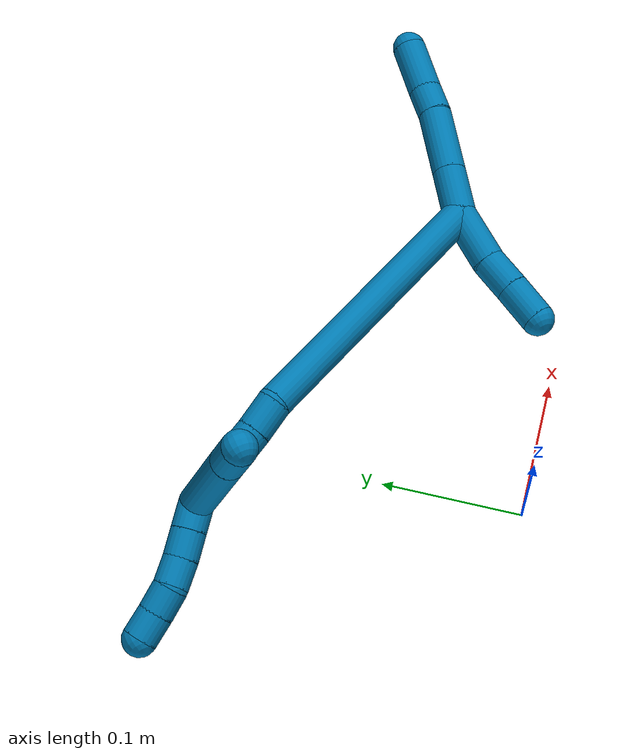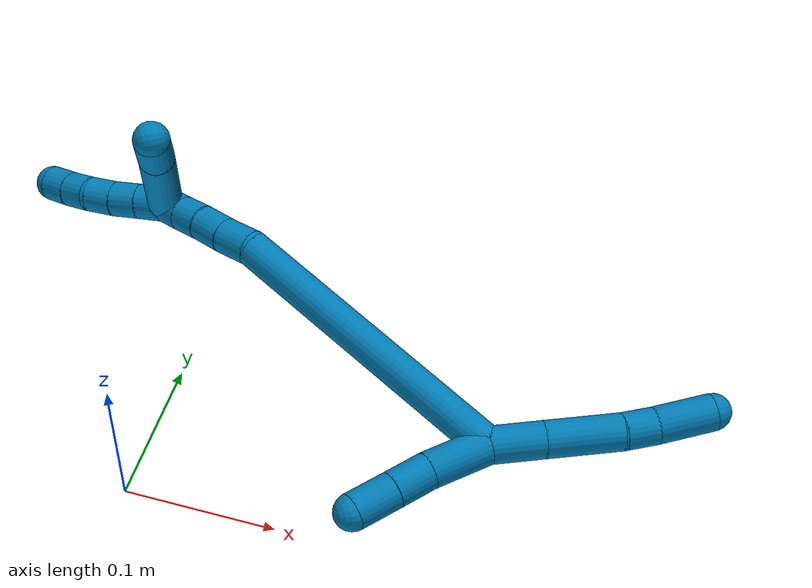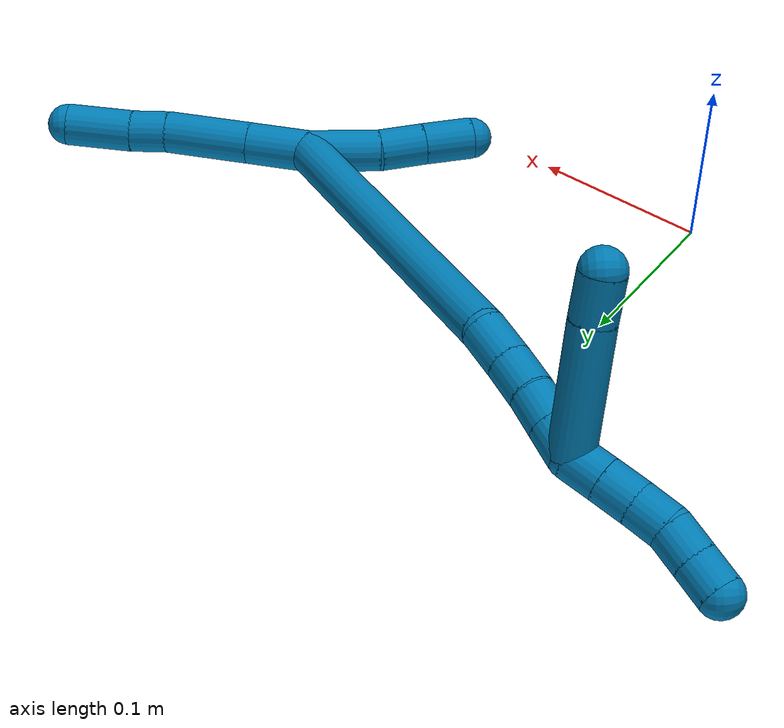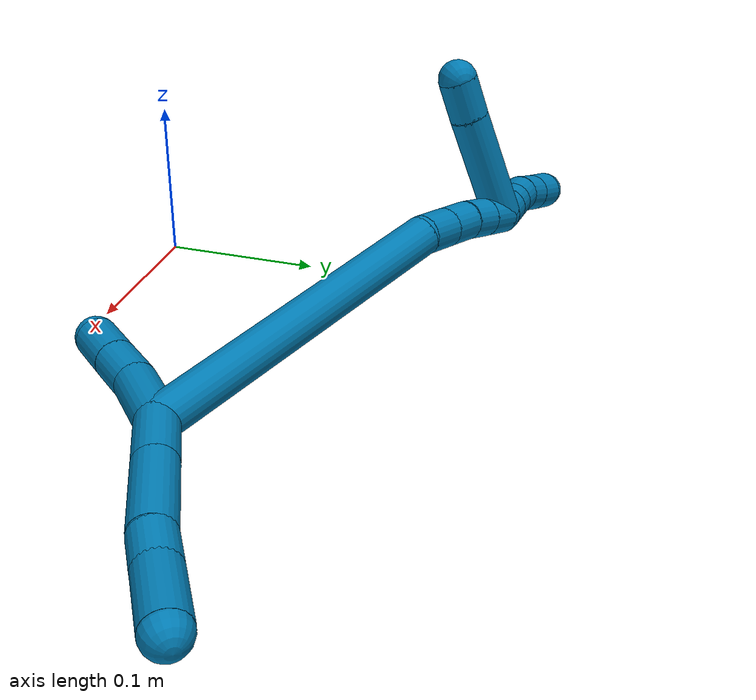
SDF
<sdf version="1.7">
 <world name="default">
  <model name="9">
   <static>0</static>
   <link name="9">
    <collision name="collision-cylinder-e_1_2_8">
     <pose>0.002317 0.003812 -0.017721 -2.92972 0.127153 -1.07891</pose>
     <geometry><cylinder><radius>0.0125</radius><length>0.036548</length></cylinder></geometry>
     <surface>
      <friction><ode><mu>1.16</mu><mu2>1.16</mu2><slip1>0</slip1><slip2>0</slip2></ode></friction>
      <contact><ode><kp>1e+06</kp><kd>1</kd><max_vel>0</max_vel><min_depth>0.001</min_depth></ode></contact>
     </surface>
    </collision>
    <visual name="visual-cylinder-e_1_2_8">
     <pose>0.002317 0.003812 -0.017721 -2.92972 0.127153 -1.07891</pose>
     <geometry><cylinder><radius>0.0125</radius><length>0.036548</length></cylinder></geometry>
     <material><ambient>0 0.490196 0.709804 1</ambient></material>
    </visual>
    <collision name="collision-cylinder-e_2_8_9">
     <pose>0.007951 0.012958 -0.060344 -2.93055 0.129504 -1.09872</pose>
     <geometry><cylinder><radius>0.0125</radius><length>0.051363</length></cylinder></geometry>
     <surface>
      <friction><ode><mu>1.16</mu><mu2>1.16</mu2><slip1>0</slip1><slip2>0</slip2></ode></friction>
      <contact><ode><kp>1e+06</kp><kd>1</kd><max_vel>0</max_vel><min_depth>0.001</min_depth></ode></contact>
     </surface>
    </collision>
    <visual name="visual-cylinder-e_2_8_9">
     <pose>0.007951 0.012958 -0.060344 -2.93055 0.129504 -1.09872</pose>
     <geometry><cylinder><radius>0.0125</radius><length>0.051363</length></cylinder></geometry>
     <material><ambient>0 0.490196 0.709804 1</ambient></material>
    </visual>
    <collision name="collision-cylinder-e_3_9_10">
     <pose>0.012072 0.019341 -0.0964 -3.04788 0.071613 -1.30469</pose>
     <geometry><cylinder><radius>0.0125</radius><length>0.022464</length></cylinder></geometry>
     <surface>
      <friction><ode><mu>1.16</mu><mu2>1.16</mu2><slip1>0</slip1><slip2>0</slip2></ode></friction>
      <contact><ode><kp>1e+06</kp><kd>1</kd><max_vel>0</max_vel><min_depth>0.001</min_depth></ode></contact>
     </surface>
    </collision>
    <visual name="visual-cylinder-e_3_9_10">
     <pose>0.012072 0.019341 -0.0964 -3.04788 0.071613 -1.30469</pose>
     <geometry><cylinder><radius>0.0125</radius><length>0.022464</length></cylinder></geometry>
     <material><ambient>0 0.490196 0.709804 1</ambient></material>
    </visual>
    <collision name="collision-cylinder-e_4_10_6">
     <pose>0.01301 0.023605 -0.127103 -2.9786 0.006784 -0.083006</pose>
     <geometry><cylinder><radius>0.0125</radius><length>0.039625</length></cylinder></geometry>
     <surface>
      <friction><ode><mu>1.16</mu><mu2>1.16</mu2><slip1>0</slip1><slip2>0</slip2></ode></friction>
      <contact><ode><kp>1e+06</kp><kd>1</kd><max_vel>0</max_vel><min_depth>0.001</min_depth></ode></contact>
     </surface>
    </collision>
    <visual name="visual-cylinder-e_4_10_6">
     <pose>0.01301 0.023605 -0.127103 -2.9786 0.006784 -0.083006</pose>
     <geometry><cylinder><radius>0.0125</radius><length>0.039625</length></cylinder></geometry>
     <material><ambient>0 0.490196 0.709804 1</ambient></material>
    </visual>
    <collision name="collision-cylinder-e_1_2_11">
     <pose>0.002711 -0.000586 0.021311 0.027486 0.126461 0.00174</pose>
     <geometry><cylinder><radius>0.0125</radius><length>0.042982</length></cylinder></geometry>
     <surface>
      <friction><ode><mu>1.16</mu><mu2>1.16</mu2><slip1>0</slip1><slip2>0</slip2></ode></friction>
      <contact><ode><kp>1e+06</kp><kd>1</kd><max_vel>0</max_vel><min_depth>0.001</min_depth></ode></contact>
     </surface>
    </collision>
    <visual name="visual-cylinder-e_1_2_11">
     <pose>0.002711 -0.000586 0.021311 0.027486 0.126461 0.00174</pose>
     <geometry><cylinder><radius>0.0125</radius><length>0.042982</length></cylinder></geometry>
     <material><ambient>0 0.490196 0.709804 1</ambient></material>
    </visual>
    <collision name="collision-cylinder-e_2_11_12">
     <pose>0.007967 0.000396 0.055917 -0.117405 0.187905 -0.011076</pose>
     <geometry><cylinder><radius>0.0125</radius><length>0.027254</length></cylinder></geometry>
     <surface>
      <friction><ode><mu>1.16</mu><mu2>1.16</mu2><slip1>0</slip1><slip2>0</slip2></ode></friction>
      <contact><ode><kp>1e+06</kp><kd>1</kd><max_vel>0</max_vel><min_depth>0.001</min_depth></ode></contact>
     </surface>
    </collision>
    <visual name="visual-cylinder-e_2_11_12">
     <pose>0.007967 0.000396 0.055917 -0.117405 0.187905 -0.011076</pose>
     <geometry><cylinder><radius>0.0125</radius><length>0.027254</length></cylinder></geometry>
     <material><ambient>0 0.490196 0.709804 1</ambient></material>
    </visual>
    <collision name="collision-cylinder-e_3_12_5">
     <pose>0.013265 0.003378 0.083769 -0.096825 0.186036 -0.009039</pose>
     <geometry><cylinder><radius>0.0125</radius><length>0.029764</length></cylinder></geometry>
     <surface>
      <friction><ode><mu>1.16</mu><mu2>1.16</mu2><slip1>0</slip1><slip2>0</slip2></ode></friction>
      <contact><ode><kp>1e+06</kp><kd>1</kd><max_vel>0</max_vel><min_depth>0.001</min_depth></ode></contact>
     </surface>
    </collision>
    <visual name="visual-cylinder-e_3_12_5">
     <pose>0.013265 0.003378 0.083769 -0.096825 0.186036 -0.009039</pose>
     <geometry><cylinder><radius>0.0125</radius><length>0.029764</length></cylinder></geometry>
     <material><ambient>0 0.490196 0.709804 1</ambient></material>
    </visual>
    <collision name="collision-cylinder-e_1_2_13">
     <pose>-0.074426 -0.059745 0.04722 0.901958 -0.773934 -0.38968</pose>
     <geometry><cylinder><radius>0.0125</radius><length>0.212965</length></cylinder></geometry>
     <surface>
      <friction><ode><mu>1.16</mu><mu2>1.16</mu2><slip1>0</slip1><slip2>0</slip2></ode></friction>
      <contact><ode><kp>1e+06</kp><kd>1</kd><max_vel>0</max_vel><min_depth>0.001</min_depth></ode></contact>
     </surface>
    </collision>
    <visual name="visual-cylinder-e_1_2_13">
     <pose>-0.074426 -0.059745 0.04722 0.901958 -0.773934 -0.38968</pose>
     <geometry><cylinder><radius>0.0125</radius><length>0.212965</length></cylinder></geometry>
     <material><ambient>0 0.490196 0.709804 1</ambient></material>
    </visual>
    <collision name="collision-cylinder-e_2_13_14">
     <pose>-0.154563 -0.128735 0.100499 0.990722 -0.476844 -0.261137</pose>
     <geometry><cylinder><radius>0.0125</radius><length>0.02488</length></cylinder></geometry>
     <surface>
      <friction><ode><mu>1.16</mu><mu2>1.16</mu2><slip1>0</slip1><slip2>0</slip2></ode></friction>
      <contact><ode><kp>1e+06</kp><kd>1</kd><max_vel>0</max_vel><min_depth>0.001</min_depth></ode></contact>
     </surface>
    </collision>
    <visual name="visual-cylinder-e_2_13_14">
     <pose>-0.154563 -0.128735 0.100499 0.990722 -0.476844 -0.261137</pose>
     <geometry><cylinder><radius>0.0125</radius><length>0.02488</length></cylinder></geometry>
     <material><ambient>0 0.490196 0.709804 1</ambient></material>
    </visual>
    <collision name="collision-cylinder-e_3_14_15">
     <pose>-0.165799 -0.146195 0.111517 1.02763 -0.522438 -0.29949</pose>
     <geometry><cylinder><radius>0.0125</radius><length>0.02215</length></cylinder></geometry>
     <surface>
      <friction><ode><mu>1.16</mu><mu2>1.16</mu2><slip1>0</slip1><slip2>0</slip2></ode></friction>
      <contact><ode><kp>1e+06</kp><kd>1</kd><max_vel>0</max_vel><min_depth>0.001</min_depth></ode></contact>
     </surface>
    </collision>
    <visual name="visual-cylinder-e_3_14_15">
     <pose>-0.165799 -0.146195 0.111517 1.02763 -0.522438 -0.29949</pose>
     <geometry><cylinder><radius>0.0125</radius><length>0.02215</length></cylinder></geometry>
     <material><ambient>0 0.490196 0.709804 1</ambient></material>
    </visual>
    <collision name="collision-cylinder-e_4_15_16">
     <pose>-0.175541 -0.162462 0.120654 1.09218 -0.435187 -0.267135</pose>
     <geometry><cylinder><radius>0.0125</radius><length>0.020003</length></cylinder></geometry>
     <surface>
      <friction><ode><mu>1.16</mu><mu2>1.16</mu2><slip1>0</slip1><slip2>0</slip2></ode></friction>
      <contact><ode><kp>1e+06</kp><kd>1</kd><max_vel>0</max_vel><min_depth>0.001</min_depth></ode></contact>
     </surface>
    </collision>
    <visual name="visual-cylinder-e_4_15_16">
     <pose>-0.175541 -0.162462 0.120654 1.09218 -0.435187 -0.267135</pose>
     <geometry><cylinder><radius>0.0125</radius><length>0.020003</length></cylinder></geometry>
     <material><ambient>0 0.490196 0.709804 1</ambient></material>
    </visual>
    <collision name="collision-cylinder-e_5_16_1">
     <pose>-0.184152 -0.178493 0.128954 1.09399 -0.45495 -0.28009</pose>
     <geometry><cylinder><radius>0.0125</radius><length>0.020002</length></cylinder></geometry>
     <surface>
      <friction><ode><mu>1.16</mu><mu2>1.16</mu2><slip1>0</slip1><slip2>0</slip2></ode></friction>
      <contact><ode><kp>1e+06</kp><kd>1</kd><max_vel>0</max_vel><min_depth>0.001</min_depth></ode></contact>
     </surface>
    </collision>
    <visual name="visual-cylinder-e_5_16_1">
     <pose>-0.184152 -0.178493 0.128954 1.09399 -0.45495 -0.28009</pose>
     <geometry><cylinder><radius>0.0125</radius><length>0.020002</length></cylinder></geometry>
     <material><ambient>0 0.490196 0.709804 1</ambient></material>
    </visual>
    <collision name="collision-cylinder-e_1_1_17">
     <pose>-0.191316 -0.192508 0.140557 0.678672 -0.280571 -0.099611</pose>
     <geometry><cylinder><radius>0.0125</radius><length>0.02</length></cylinder></geometry>
     <surface>
      <friction><ode><mu>1.16</mu><mu2>1.16</mu2><slip1>0</slip1><slip2>0</slip2></ode></friction>
      <contact><ode><kp>1e+06</kp><kd>1</kd><max_vel>0</max_vel><min_depth>0.001</min_depth></ode></contact>
     </surface>
    </collision>
    <visual name="visual-cylinder-e_1_1_17">
     <pose>-0.191316 -0.192508 0.140557 0.678672 -0.280571 -0.099611</pose>
     <geometry><cylinder><radius>0.0125</radius><length>0.02</length></cylinder></geometry>
     <material><ambient>0 0.490196 0.709804 1</ambient></material>
    </visual>
    <collision name="collision-cylinder-e_2_17_18">
     <pose>-0.196721 -0.204655 0.155496 0.686692 -0.266802 -0.09588</pose>
     <geometry><cylinder><radius>0.0125</radius><length>0.02</length></cylinder></geometry>
     <surface>
      <friction><ode><mu>1.16</mu><mu2>1.16</mu2><slip1>0</slip1><slip2>0</slip2></ode></friction>
      <contact><ode><kp>1e+06</kp><kd>1</kd><max_vel>0</max_vel><min_depth>0.001</min_depth></ode></contact>
     </surface>
    </collision>
    <visual name="visual-cylinder-e_2_17_18">
     <pose>-0.196721 -0.204655 0.155496 0.686692 -0.266802 -0.09588</pose>
     <geometry><cylinder><radius>0.0125</radius><length>0.02</length></cylinder></geometry>
     <material><ambient>0 0.490196 0.709804 1</ambient></material>
    </visual>
    <collision name="collision-cylinder-e_3_18_19">
     <pose>-0.202705 -0.216949 0.170071 0.715079 -0.341256 -0.128567</pose>
     <geometry><cylinder><radius>0.0125</radius><length>0.02</length></cylinder></geometry>
     <surface>
      <friction><ode><mu>1.16</mu><mu2>1.16</mu2><slip1>0</slip1><slip2>0</slip2></ode></friction>
      <contact><ode><kp>1e+06</kp><kd>1</kd><max_vel>0</max_vel><min_depth>0.001</min_depth></ode></contact>
     </surface>
    </collision>
    <visual name="visual-cylinder-e_3_18_19">
     <pose>-0.202705 -0.216949 0.170071 0.715079 -0.341256 -0.128567</pose>
     <geometry><cylinder><radius>0.0125</radius><length>0.02</length></cylinder></geometry>
     <material><ambient>0 0.490196 0.709804 1</ambient></material>
    </visual>
    <collision name="collision-cylinder-e_4_19_20">
     <pose>-0.209098 -0.231108 0.182386 0.993271 -0.309628 -0.168752</pose>
     <geometry><cylinder><radius>0.0125</radius><length>0.02</length></cylinder></geometry>
     <surface>
      <friction><ode><mu>1.16</mu><mu2>1.16</mu2><slip1>0</slip1><slip2>0</slip2></ode></friction>
      <contact><ode><kp>1e+06</kp><kd>1</kd><max_vel>0</max_vel><min_depth>0.001</min_depth></ode></contact>
     </surface>
    </collision>
    <visual name="visual-cylinder-e_4_19_20">
     <pose>-0.209098 -0.231108 0.182386 0.993271 -0.309628 -0.168752</pose>
     <geometry><cylinder><radius>0.0125</radius><length>0.02</length></cylinder></geometry>
     <material><ambient>0 0.490196 0.709804 1</ambient></material>
    </visual>
    <collision name="collision-cylinder-e_5_20_4">
     <pose>-0.215763 -0.246923 0.192637 0.998179 -0.370114 -0.203388</pose>
     <geometry><cylinder><radius>0.0125</radius><length>0.02</length></cylinder></geometry>
     <surface>
      <friction><ode><mu>1.16</mu><mu2>1.16</mu2><slip1>0</slip1><slip2>0</slip2></ode></friction>
      <contact><ode><kp>1e+06</kp><kd>1</kd><max_vel>0</max_vel><min_depth>0.001</min_depth></ode></contact>
     </surface>
    </collision>
    <visual name="visual-cylinder-e_5_20_4">
     <pose>-0.215763 -0.246923 0.192637 0.998179 -0.370114 -0.203388</pose>
     <geometry><cylinder><radius>0.0125</radius><length>0.02</length></cylinder></geometry>
     <material><ambient>0 0.490196 0.709804 1</ambient></material>
    </visual>
    <collision name="collision-cylinder-e_1_1_21">
     <pose>-0.205151 -0.15402 0.138946 -1.3919 -0.466389 0.391747</pose>
     <geometry><cylinder><radius>0.0125</radius><length>0.073851</length></cylinder></geometry>
     <surface>
      <friction><ode><mu>1.16</mu><mu2>1.16</mu2><slip1>0</slip1><slip2>0</slip2></ode></friction>
      <contact><ode><kp>1e+06</kp><kd>1</kd><max_vel>0</max_vel><min_depth>0.001</min_depth></ode></contact>
     </surface>
    </collision>
    <visual name="visual-cylinder-e_1_1_21">
     <pose>-0.205151 -0.15402 0.138946 -1.3919 -0.466389 0.391747</pose>
     <geometry><cylinder><radius>0.0125</radius><length>0.073851</length></cylinder></geometry>
     <material><ambient>0 0.490196 0.709804 1</ambient></material>
    </visual>
    <collision name="collision-cylinder-e_2_21_3">
     <pose>-0.227984 -0.110333 0.147263 -1.35616 -0.496612 0.402905</pose>
     <geometry><cylinder><radius>0.0125</radius><length>0.026149</length></cylinder></geometry>
     <surface>
      <friction><ode><mu>1.16</mu><mu2>1.16</mu2><slip1>0</slip1><slip2>0</slip2></ode></friction>
      <contact><ode><kp>1e+06</kp><kd>1</kd><max_vel>0</max_vel><min_depth>0.001</min_depth></ode></contact>
     </surface>
    </collision>
    <visual name="visual-cylinder-e_2_21_3">
     <pose>-0.227984 -0.110333 0.147263 -1.35616 -0.496612 0.402905</pose>
     <geometry><cylinder><radius>0.0125</radius><length>0.026149</length></cylinder></geometry>
     <material><ambient>0 0.490196 0.709804 1</ambient></material>
    </visual>
    <collision name="collision-sphere-3">
     <pose>-0.234214 -0.099102 0.149711 0 -0 0</pose>
     <geometry><sphere><radius>0.0125</radius></sphere></geometry>
     <surface>
      <friction><ode><mu>1.16</mu><mu2>1.16</mu2><slip1>0</slip1><slip2>0</slip2></ode></friction>
      <contact><ode><kp>1e+06</kp><kd>1</kd><max_vel>0</max_vel><min_depth>0.001</min_depth></ode></contact>
     </surface>
    </collision>
    <visual name="visual-sphere-3">
     <pose>-0.234214 -0.099102 0.149711 0 -0 0</pose>
     <geometry><sphere><radius>0.0125</radius></sphere></geometry>
     <material><ambient>0 0.490196 0.709804 1</ambient></material>
    </visual>
    <collision name="collision-sphere-21">
     <pose>-0.221755 -0.121564 0.144815 0 -0 0</pose>
     <geometry><sphere><radius>0.0125</radius></sphere></geometry>
     <surface>
      <friction><ode><mu>1.16</mu><mu2>1.16</mu2><slip1>0</slip1><slip2>0</slip2></ode></friction>
      <contact><ode><kp>1e+06</kp><kd>1</kd><max_vel>0</max_vel><min_depth>0.001</min_depth></ode></contact>
     </surface>
    </collision>
    <visual name="visual-sphere-21">
     <pose>-0.221755 -0.121564 0.144815 0 -0 0</pose>
     <geometry><sphere><radius>0.0125</radius></sphere></geometry>
     <material><ambient>0 0.490196 0.709804 1</ambient></material>
    </visual>
    <collision name="collision-sphere-4">
     <pose>-0.21938 -0.254759 0.197689 0 -0 0</pose>
     <geometry><sphere><radius>0.0125</radius></sphere></geometry>
     <surface>
      <friction><ode><mu>1.16</mu><mu2>1.16</mu2><slip1>0</slip1><slip2>0</slip2></ode></friction>
      <contact><ode><kp>1e+06</kp><kd>1</kd><max_vel>0</max_vel><min_depth>0.001</min_depth></ode></contact>
     </surface>
    </collision>
    <visual name="visual-sphere-4">
     <pose>-0.21938 -0.254759 0.197689 0 -0 0</pose>
     <geometry><sphere><radius>0.0125</radius></sphere></geometry>
     <material><ambient>0 0.490196 0.709804 1</ambient></material>
    </visual>
    <collision name="collision-sphere-20">
     <pose>-0.212145 -0.239088 0.187586 0 -0 0</pose>
     <geometry><sphere><radius>0.0125</radius></sphere></geometry>
     <surface>
      <friction><ode><mu>1.16</mu><mu2>1.16</mu2><slip1>0</slip1><slip2>0</slip2></ode></friction>
      <contact><ode><kp>1e+06</kp><kd>1</kd><max_vel>0</max_vel><min_depth>0.001</min_depth></ode></contact>
     </surface>
    </collision>
    <visual name="visual-sphere-20">
     <pose>-0.212145 -0.239088 0.187586 0 -0 0</pose>
     <geometry><sphere><radius>0.0125</radius></sphere></geometry>
     <material><ambient>0 0.490196 0.709804 1</ambient></material>
    </visual>
    <collision name="collision-sphere-11">
     <pose>0.005421 -0.001172 0.042622 0 -0 0</pose>
     <geometry><sphere><radius>0.0125</radius></sphere></geometry>
     <surface>
      <friction><ode><mu>1.16</mu><mu2>1.16</mu2><slip1>0</slip1><slip2>0</slip2></ode></friction>
      <contact><ode><kp>1e+06</kp><kd>1</kd><max_vel>0</max_vel><min_depth>0.001</min_depth></ode></contact>
     </surface>
    </collision>
    <visual name="visual-sphere-11">
     <pose>0.005421 -0.001172 0.042622 0 -0 0</pose>
     <geometry><sphere><radius>0.0125</radius></sphere></geometry>
     <material><ambient>0 0.490196 0.709804 1</ambient></material>
    </visual>
    <collision name="collision-sphere-6">
     <pose>0.013144 0.02682 -0.146652 0 -0 0</pose>
     <geometry><sphere><radius>0.0125</radius></sphere></geometry>
     <surface>
      <friction><ode><mu>1.16</mu><mu2>1.16</mu2><slip1>0</slip1><slip2>0</slip2></ode></friction>
      <contact><ode><kp>1e+06</kp><kd>1</kd><max_vel>0</max_vel><min_depth>0.001</min_depth></ode></contact>
     </surface>
    </collision>
    <visual name="visual-sphere-6">
     <pose>0.013144 0.02682 -0.146652 0 -0 0</pose>
     <geometry><sphere><radius>0.0125</radius></sphere></geometry>
     <material><ambient>0 0.490196 0.709804 1</ambient></material>
    </visual>
    <collision name="collision-sphere-10">
     <pose>0.012875 0.02039 -0.107554 0 -0 0</pose>
     <geometry><sphere><radius>0.0125</radius></sphere></geometry>
     <surface>
      <friction><ode><mu>1.16</mu><mu2>1.16</mu2><slip1>0</slip1><slip2>0</slip2></ode></friction>
      <contact><ode><kp>1e+06</kp><kd>1</kd><max_vel>0</max_vel><min_depth>0.001</min_depth></ode></contact>
     </surface>
    </collision>
    <visual name="visual-sphere-10">
     <pose>0.012875 0.02039 -0.107554 0 -0 0</pose>
     <geometry><sphere><radius>0.0125</radius></sphere></geometry>
     <material><ambient>0 0.490196 0.709804 1</ambient></material>
    </visual>
    <collision name="collision-sphere-9">
     <pose>0.011268 0.018293 -0.085246 0 -0 0</pose>
     <geometry><sphere><radius>0.0125</radius></sphere></geometry>
     <surface>
      <friction><ode><mu>1.16</mu><mu2>1.16</mu2><slip1>0</slip1><slip2>0</slip2></ode></friction>
      <contact><ode><kp>1e+06</kp><kd>1</kd><max_vel>0</max_vel><min_depth>0.001</min_depth></ode></contact>
     </surface>
    </collision>
    <visual name="visual-sphere-9">
     <pose>0.011268 0.018293 -0.085246 0 -0 0</pose>
     <geometry><sphere><radius>0.0125</radius></sphere></geometry>
     <material><ambient>0 0.490196 0.709804 1</ambient></material>
    </visual>
    <collision name="collision-sphere-2">
     <geometry><sphere><radius>0.0125</radius></sphere></geometry>
     <surface>
      <friction><ode><mu>1.16</mu><mu2>1.16</mu2><slip1>0</slip1><slip2>0</slip2></ode></friction>
      <contact><ode><kp>1e+06</kp><kd>1</kd><max_vel>0</max_vel><min_depth>0.001</min_depth></ode></contact>
     </surface>
    </collision>
    <visual name="visual-sphere-2">
     <geometry><sphere><radius>0.0125</radius></sphere></geometry>
     <material><ambient>0 0.490196 0.709804 1</ambient></material>
    </visual>
    <collision name="collision-sphere-19">
     <pose>-0.206051 -0.223128 0.177186 0 -0 0</pose>
     <geometry><sphere><radius>0.0125</radius></sphere></geometry>
     <surface>
      <friction><ode><mu>1.16</mu><mu2>1.16</mu2><slip1>0</slip1><slip2>0</slip2></ode></friction>
      <contact><ode><kp>1e+06</kp><kd>1</kd><max_vel>0</max_vel><min_depth>0.001</min_depth></ode></contact>
     </surface>
    </collision>
    <visual name="visual-sphere-19">
     <pose>-0.206051 -0.223128 0.177186 0 -0 0</pose>
     <geometry><sphere><radius>0.0125</radius></sphere></geometry>
     <material><ambient>0 0.490196 0.709804 1</ambient></material>
    </visual>
    <collision name="collision-sphere-8">
     <pose>0.004635 0.007624 -0.035442 0 -0 0</pose>
     <geometry><sphere><radius>0.0125</radius></sphere></geometry>
     <surface>
      <friction><ode><mu>1.16</mu><mu2>1.16</mu2><slip1>0</slip1><slip2>0</slip2></ode></friction>
      <contact><ode><kp>1e+06</kp><kd>1</kd><max_vel>0</max_vel><min_depth>0.001</min_depth></ode></contact>
     </surface>
    </collision>
    <visual name="visual-sphere-8">
     <pose>0.004635 0.007624 -0.035442 0 -0 0</pose>
     <geometry><sphere><radius>0.0125</radius></sphere></geometry>
     <material><ambient>0 0.490196 0.709804 1</ambient></material>
    </visual>
    <collision name="collision-sphere-12">
     <pose>0.010512 0.001964 0.069213 0 -0 0</pose>
     <geometry><sphere><radius>0.0125</radius></sphere></geometry>
     <surface>
      <friction><ode><mu>1.16</mu><mu2>1.16</mu2><slip1>0</slip1><slip2>0</slip2></ode></friction>
      <contact><ode><kp>1e+06</kp><kd>1</kd><max_vel>0</max_vel><min_depth>0.001</min_depth></ode></contact>
     </surface>
    </collision>
    <visual name="visual-sphere-12">
     <pose>0.010512 0.001964 0.069213 0 -0 0</pose>
     <geometry><sphere><radius>0.0125</radius></sphere></geometry>
     <material><ambient>0 0.490196 0.709804 1</ambient></material>
    </visual>
    <collision name="collision-sphere-5">
     <pose>0.016017 0.004792 0.098326 0 -0 0</pose>
     <geometry><sphere><radius>0.0125</radius></sphere></geometry>
     <surface>
      <friction><ode><mu>1.16</mu><mu2>1.16</mu2><slip1>0</slip1><slip2>0</slip2></ode></friction>
      <contact><ode><kp>1e+06</kp><kd>1</kd><max_vel>0</max_vel><min_depth>0.001</min_depth></ode></contact>
     </surface>
    </collision>
    <visual name="visual-sphere-5">
     <pose>0.016017 0.004792 0.098326 0 -0 0</pose>
     <geometry><sphere><radius>0.0125</radius></sphere></geometry>
     <material><ambient>0 0.490196 0.709804 1</ambient></material>
    </visual>
    <collision name="collision-sphere-13">
     <pose>-0.148853 -0.11949 0.094441 0 -0 0</pose>
     <geometry><sphere><radius>0.0125</radius></sphere></geometry>
     <surface>
      <friction><ode><mu>1.16</mu><mu2>1.16</mu2><slip1>0</slip1><slip2>0</slip2></ode></friction>
      <contact><ode><kp>1e+06</kp><kd>1</kd><max_vel>0</max_vel><min_depth>0.001</min_depth></ode></contact>
     </surface>
    </collision>
    <visual name="visual-sphere-13">
     <pose>-0.148853 -0.11949 0.094441 0 -0 0</pose>
     <geometry><sphere><radius>0.0125</radius></sphere></geometry>
     <material><ambient>0 0.490196 0.709804 1</ambient></material>
    </visual>
    <collision name="collision-sphere-14">
     <pose>-0.160272 -0.137979 0.106556 0 -0 0</pose>
     <geometry><sphere><radius>0.0125</radius></sphere></geometry>
     <surface>
      <friction><ode><mu>1.16</mu><mu2>1.16</mu2><slip1>0</slip1><slip2>0</slip2></ode></friction>
      <contact><ode><kp>1e+06</kp><kd>1</kd><max_vel>0</max_vel><min_depth>0.001</min_depth></ode></contact>
     </surface>
    </collision>
    <visual name="visual-sphere-14">
     <pose>-0.160272 -0.137979 0.106556 0 -0 0</pose>
     <geometry><sphere><radius>0.0125</radius></sphere></geometry>
     <material><ambient>0 0.490196 0.709804 1</ambient></material>
    </visual>
    <collision name="collision-sphere-15">
     <pose>-0.171325 -0.154411 0.116477 0 -0 0</pose>
     <geometry><sphere><radius>0.0125</radius></sphere></geometry>
     <surface>
      <friction><ode><mu>1.16</mu><mu2>1.16</mu2><slip1>0</slip1><slip2>0</slip2></ode></friction>
      <contact><ode><kp>1e+06</kp><kd>1</kd><max_vel>0</max_vel><min_depth>0.001</min_depth></ode></contact>
     </surface>
    </collision>
    <visual name="visual-sphere-15">
     <pose>-0.171325 -0.154411 0.116477 0 -0 0</pose>
     <geometry><sphere><radius>0.0125</radius></sphere></geometry>
     <material><ambient>0 0.490196 0.709804 1</ambient></material>
    </visual>
    <collision name="collision-sphere-16">
     <pose>-0.179758 -0.170512 0.124831 0 -0 0</pose>
     <geometry><sphere><radius>0.0125</radius></sphere></geometry>
     <surface>
      <friction><ode><mu>1.16</mu><mu2>1.16</mu2><slip1>0</slip1><slip2>0</slip2></ode></friction>
      <contact><ode><kp>1e+06</kp><kd>1</kd><max_vel>0</max_vel><min_depth>0.001</min_depth></ode></contact>
     </surface>
    </collision>
    <visual name="visual-sphere-16">
     <pose>-0.179758 -0.170512 0.124831 0 -0 0</pose>
     <geometry><sphere><radius>0.0125</radius></sphere></geometry>
     <material><ambient>0 0.490196 0.709804 1</ambient></material>
    </visual>
    <collision name="collision-sphere-1">
     <pose>-0.188547 -0.186475 0.133077 0 -0 0</pose>
     <geometry><sphere><radius>0.0125</radius></sphere></geometry>
     <surface>
      <friction><ode><mu>1.16</mu><mu2>1.16</mu2><slip1>0</slip1><slip2>0</slip2></ode></friction>
      <contact><ode><kp>1e+06</kp><kd>1</kd><max_vel>0</max_vel><min_depth>0.001</min_depth></ode></contact>
     </surface>
    </collision>
    <visual name="visual-sphere-1">
     <pose>-0.188547 -0.186475 0.133077 0 -0 0</pose>
     <geometry><sphere><radius>0.0125</radius></sphere></geometry>
     <material><ambient>0 0.490196 0.709804 1</ambient></material>
    </visual>
    <collision name="collision-sphere-18">
     <pose>-0.199358 -0.210771 0.162956 0 -0 0</pose>
     <geometry><sphere><radius>0.0125</radius></sphere></geometry>
     <surface>
      <friction><ode><mu>1.16</mu><mu2>1.16</mu2><slip1>0</slip1><slip2>0</slip2></ode></friction>
      <contact><ode><kp>1e+06</kp><kd>1</kd><max_vel>0</max_vel><min_depth>0.001</min_depth></ode></contact>
     </surface>
    </collision>
    <visual name="visual-sphere-18">
     <pose>-0.199358 -0.210771 0.162956 0 -0 0</pose>
     <geometry><sphere><radius>0.0125</radius></sphere></geometry>
     <material><ambient>0 0.490196 0.709804 1</ambient></material>
    </visual>
    <collision name="collision-sphere-17">
     <pose>-0.194085 -0.19854 0.148036 0 -0 0</pose>
     <geometry><sphere><radius>0.0125</radius></sphere></geometry>
     <surface>
      <friction><ode><mu>1.16</mu><mu2>1.16</mu2><slip1>0</slip1><slip2>0</slip2></ode></friction>
      <contact><ode><kp>1e+06</kp><kd>1</kd><max_vel>0</max_vel><min_depth>0.001</min_depth></ode></contact>
     </surface>
    </collision>
    <visual name="visual-sphere-17">
     <pose>-0.194085 -0.19854 0.148036 0 -0 0</pose>
     <geometry><sphere><radius>0.0125</radius></sphere></geometry>
     <material><ambient>0 0.490196 0.709804 1</ambient></material>
    </visual>
    <inertial>
     <pose>-0.093305 -0.079768 0.059918 0 -0 0</pose>
     <mass>0.75</mass>
     <inertia>
      <ixx>0.000365</ixx>
      <ixy>0</ixy>
      <ixz>0</ixz>
      <iyy>0.000418</iyy>
      <iyz>0</iyz>
      <izz>0.001026</izz>
     </inertia>
    </inertial>
   </link>
   <pose>0.213793 0.090907 0.014551 1.47918 0.811551 -0.971791</pose>
  </model>
 </world>
</sdf>
